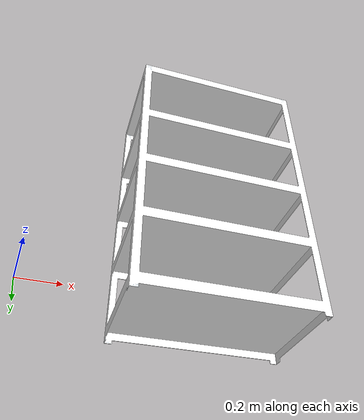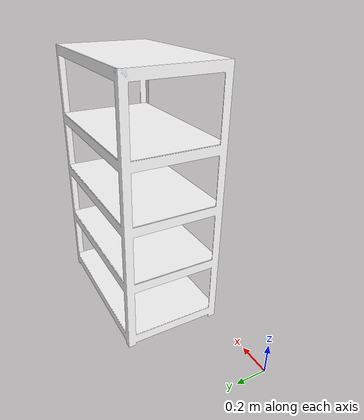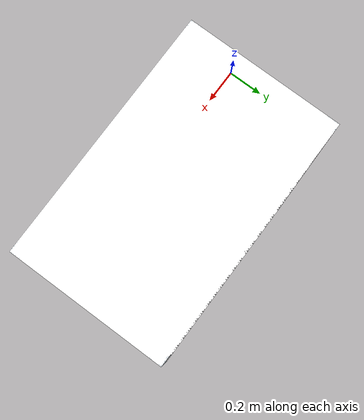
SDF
<?xml version="1.0" ?>
<sdf version="1.6">
  <model name="metalshelf">
    <static>true</static>
    <link name="link">
      <collision name="collision">
        <geometry>
          <mesh>
            <scale>1.2 1.4 1</scale>
            <uri>model://metalshelf/meshes/metalshelf.dae</uri>
          </mesh>
        </geometry>
      </collision>
      <visual name="visual">
        <geometry>
          <mesh>
            <scale>1.2 1.4 1</scale>
            <uri>model://metalshelf/meshes/metalshelf.dae</uri>
          </mesh>
        </geometry>
      </visual>
    </link>
  </model>
</sdf>
